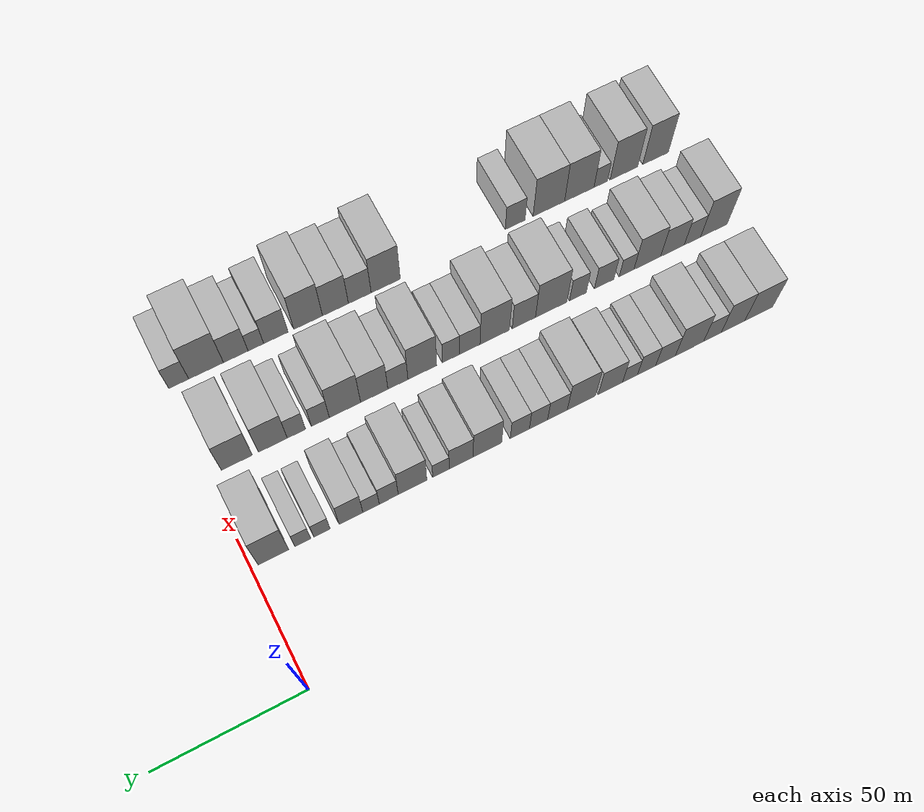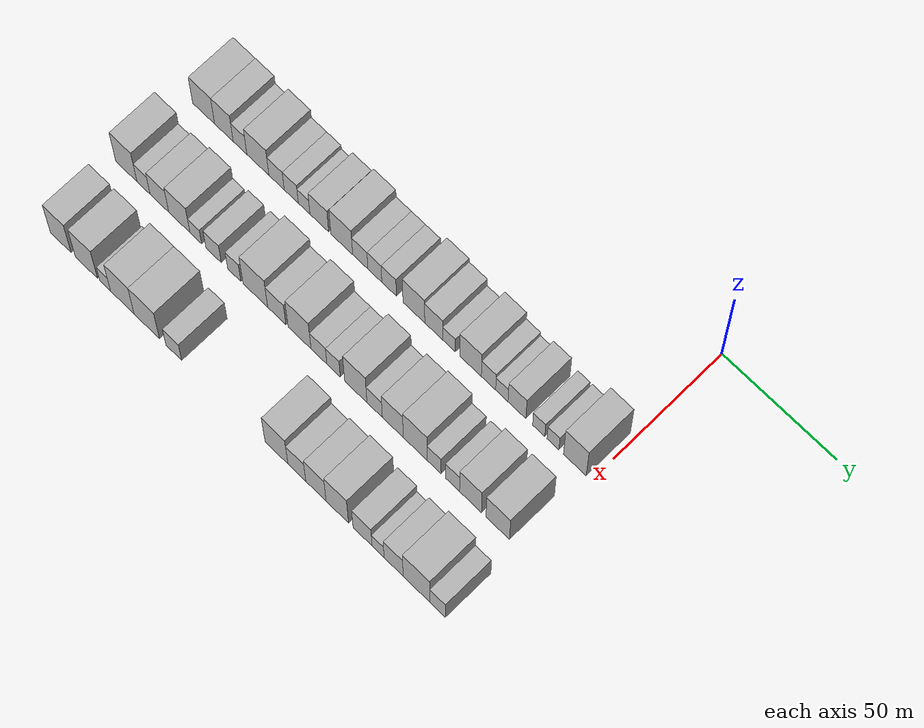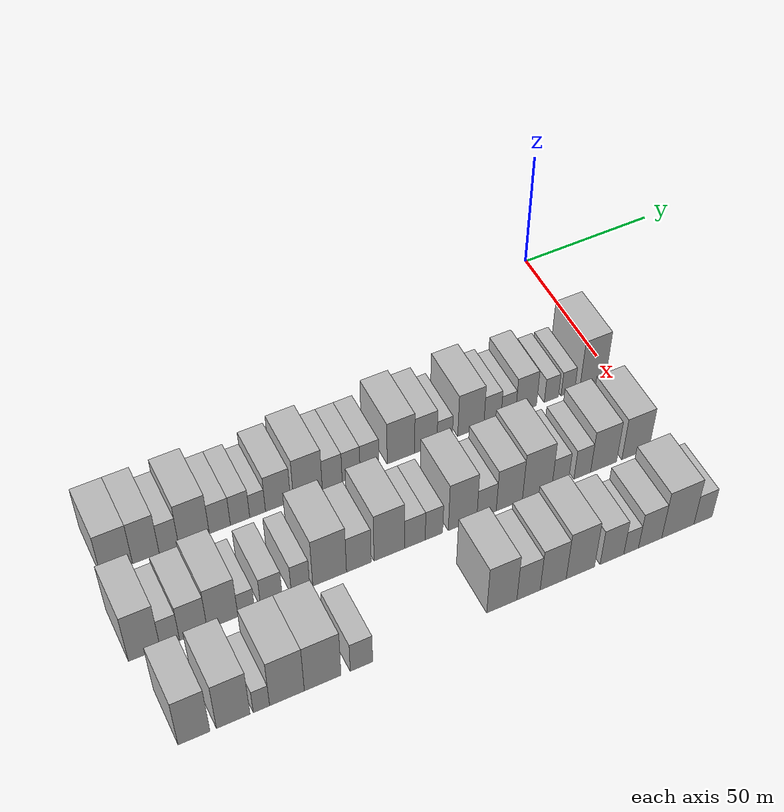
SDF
<sdf version="1.6">
 <world name="default">
  <model name="building_22">
   <static>1</static>
   <pose>50.0000 -177.7579 0 0.000000 0.000000 0.000000</pose>
   <link name="link">
    <pose>0 0 10.50 0 0 0</pose>
    <collision name="collision"><geometry><box><size>20.0000 10.4993 21.0000</size></box></geometry></collision>
    <visual name="visual">
     <cast_shadows>0</cast_shadows>
     <geometry><box><size>20.0000 10.4993 21.0000</size></box></geometry>
     <material>
      <script>
       <uri>model://HANNAS_wall/materials/scripts</uri>
       <uri>model://HANNAS_wall/materials/textures</uri>
       <name>vrc/HANNAS_wall</name>
      </script>
     </material>
    </visual>
   </link>
  </model>
  <model name="building_23">
   <static>1</static>
   <pose>50.0000 -168.1030 0 0.000000 0.000000 0.000000</pose>
   <link name="link">
    <pose>0 0 10.50 0 0 0</pose>
    <collision name="collision"><geometry><box><size>20.0000 8.8106 21.0000</size></box></geometry></collision>
    <visual name="visual">
     <cast_shadows>0</cast_shadows>
     <geometry><box><size>20.0000 8.8106 21.0000</size></box></geometry>
     <material>
      <script>
       <uri>model://HANNAS_wall/materials/scripts</uri>
       <uri>model://HANNAS_wall/materials/textures</uri>
       <name>vrc/HANNAS_wall</name>
      </script>
     </material>
    </visual>
   </link>
  </model>
  <model name="building_24">
   <static>1</static>
   <pose>50.0000 -160.4572 0 0.000000 0.000000 0.000000</pose>
   <link name="link">
    <pose>0 0 7.50 0 0 0</pose>
    <collision name="collision"><geometry><box><size>20.0000 6.4809 15.0000</size></box></geometry></collision>
    <visual name="visual">
     <cast_shadows>0</cast_shadows>
     <geometry><box><size>20.0000 6.4809 15.0000</size></box></geometry>
     <material>
      <script>
       <uri>model://HANNAS_wall/materials/scripts</uri>
       <uri>model://HANNAS_wall/materials/textures</uri>
       <name>vrc/HANNAS_wall</name>
      </script>
     </material>
    </visual>
   </link>
  </model>
  <model name="building_25">
   <static>1</static>
   <pose>50.0000 -152.0368 0 0.000000 0.000000 0.000000</pose>
   <link name="link">
    <pose>0 0 10.50 0 0 0</pose>
    <collision name="collision"><geometry><box><size>20.0000 10.3600 21.0000</size></box></geometry></collision>
    <visual name="visual">
     <cast_shadows>0</cast_shadows>
     <geometry><box><size>20.0000 10.3600 21.0000</size></box></geometry>
     <material>
      <script>
       <uri>model://HANNAS_wall/materials/scripts</uri>
       <uri>model://HANNAS_wall/materials/textures</uri>
       <name>vrc/HANNAS_wall</name>
      </script>
     </material>
    </visual>
   </link>
  </model>
  <model name="building_26">
   <static>1</static>
   <pose>50.0000 -143.2596 0 0.000000 0.000000 0.000000</pose>
   <link name="link">
    <pose>0 0 7.50 0 0 0</pose>
    <collision name="collision"><geometry><box><size>20.0000 7.1944 15.0000</size></box></geometry></collision>
    <visual name="visual">
     <cast_shadows>0</cast_shadows>
     <geometry><box><size>20.0000 7.1944 15.0000</size></box></geometry>
     <material>
      <script>
       <uri>model://HANNAS_wall/materials/scripts</uri>
       <uri>model://HANNAS_wall/materials/textures</uri>
       <name>vrc/HANNAS_wall</name>
      </script>
     </material>
    </visual>
   </link>
  </model>
  <model name="building_27">
   <static>1</static>
   <pose>50.0000 -136.3600 0 0.000000 0.000000 0.000000</pose>
   <link name="link">
    <pose>0 0 7.50 0 0 0</pose>
    <collision name="collision"><geometry><box><size>20.0000 6.6048 15.0000</size></box></geometry></collision>
    <visual name="visual">
     <cast_shadows>0</cast_shadows>
     <geometry><box><size>20.0000 6.6048 15.0000</size></box></geometry>
     <material>
      <script>
       <uri>model://HANNAS_wall/materials/scripts</uri>
       <uri>model://HANNAS_wall/materials/textures</uri>
       <name>vrc/HANNAS_wall</name>
      </script>
     </material>
    </visual>
   </link>
  </model>
  <model name="building_28">
   <static>1</static>
   <pose>50.0000 -130.3488 0 0.000000 0.000000 0.000000</pose>
   <link name="link">
    <pose>0 0 6.00 0 0 0</pose>
    <collision name="collision"><geometry><box><size>20.0000 5.4176 12.0000</size></box></geometry></collision>
    <visual name="visual">
     <cast_shadows>0</cast_shadows>
     <geometry><box><size>20.0000 5.4176 12.0000</size></box></geometry>
     <material>
      <script>
       <uri>model://HANNAS_wall/materials/scripts</uri>
       <uri>model://HANNAS_wall/materials/textures</uri>
       <name>vrc/HANNAS_wall</name>
      </script>
     </material>
    </visual>
   </link>
  </model>
  <model name="building_29">
   <static>1</static>
   <pose>50.0000 -123.2638 0 0.000000 0.000000 0.000000</pose>
   <link name="link">
    <pose>0 0 9.00 0 0 0</pose>
    <collision name="collision"><geometry><box><size>20.0000 8.7524 18.0000</size></box></geometry></collision>
    <visual name="visual">
     <cast_shadows>0</cast_shadows>
     <geometry><box><size>20.0000 8.7524 18.0000</size></box></geometry>
     <material>
      <script>
       <uri>model://HANNAS_wall/materials/scripts</uri>
       <uri>model://HANNAS_wall/materials/textures</uri>
       <name>vrc/HANNAS_wall</name>
      </script>
     </material>
    </visual>
   </link>
  </model>
  <model name="building_30">
   <static>1</static>
   <pose>50.0000 -112.8413 0 0.000000 0.000000 0.000000</pose>
   <link name="link">
    <pose>0 0 10.50 0 0 0</pose>
    <collision name="collision"><geometry><box><size>20.0000 10.0927 21.0000</size></box></geometry></collision>
    <visual name="visual">
     <cast_shadows>0</cast_shadows>
     <geometry><box><size>20.0000 10.0927 21.0000</size></box></geometry>
     <material>
      <script>
       <uri>model://HANNAS_wall/materials/scripts</uri>
       <uri>model://HANNAS_wall/materials/textures</uri>
       <name>vrc/HANNAS_wall</name>
      </script>
     </material>
    </visual>
   </link>
  </model>
  <model name="building_31">
   <static>1</static>
   <pose>50.0000 -104.2819 0 0.000000 0.000000 0.000000</pose>
   <link name="link">
    <pose>0 0 7.50 0 0 0</pose>
    <collision name="collision"><geometry><box><size>20.0000 7.0259 15.0000</size></box></geometry></collision>
    <visual name="visual">
     <cast_shadows>0</cast_shadows>
     <geometry><box><size>20.0000 7.0259 15.0000</size></box></geometry>
     <material>
      <script>
       <uri>model://HANNAS_wall/materials/scripts</uri>
       <uri>model://HANNAS_wall/materials/textures</uri>
       <name>vrc/HANNAS_wall</name>
      </script>
     </material>
    </visual>
   </link>
  </model>
  <model name="building_32">
   <static>1</static>
   <pose>50.0000 -97.5649 0 0.000000 0.000000 0.000000</pose>
   <link name="link">
    <pose>0 0 7.50 0 0 0</pose>
    <collision name="collision"><geometry><box><size>20.0000 6.4082 15.0000</size></box></geometry></collision>
    <visual name="visual">
     <cast_shadows>0</cast_shadows>
     <geometry><box><size>20.0000 6.4082 15.0000</size></box></geometry>
     <material>
      <script>
       <uri>model://HANNAS_wall/materials/scripts</uri>
       <uri>model://HANNAS_wall/materials/textures</uri>
       <name>vrc/HANNAS_wall</name>
      </script>
     </material>
    </visual>
   </link>
  </model>
  <model name="building_33">
   <static>1</static>
   <pose>50.0000 -91.0051 0 0.000000 0.000000 0.000000</pose>
   <link name="link">
    <pose>0 0 7.50 0 0 0</pose>
    <collision name="collision"><geometry><box><size>20.0000 6.7113 15.0000</size></box></geometry></collision>
    <visual name="visual">
     <cast_shadows>0</cast_shadows>
     <geometry><box><size>20.0000 6.7113 15.0000</size></box></geometry>
     <material>
      <script>
       <uri>model://HANNAS_wall/materials/scripts</uri>
       <uri>model://HANNAS_wall/materials/textures</uri>
       <name>vrc/HANNAS_wall</name>
      </script>
     </material>
    </visual>
   </link>
  </model>
  <model name="building_34">
   <static>1</static>
   <pose>50.0000 -79.6715 0 0.000000 0.000000 0.000000</pose>
   <link name="link">
    <pose>0 0 10.50 0 0 0</pose>
    <collision name="collision"><geometry><box><size>20.0000 9.9561 21.0000</size></box></geometry></collision>
    <visual name="visual">
     <cast_shadows>0</cast_shadows>
     <geometry><box><size>20.0000 9.9561 21.0000</size></box></geometry>
     <material>
      <script>
       <uri>model://HANNAS_wall/materials/scripts</uri>
       <uri>model://HANNAS_wall/materials/textures</uri>
       <name>vrc/HANNAS_wall</name>
      </script>
     </material>
    </visual>
   </link>
  </model>
  <model name="building_35">
   <static>1</static>
   <pose>50.0000 -70.5820 0 0.000000 0.000000 0.000000</pose>
   <link name="link">
    <pose>0 0 9.00 0 0 0</pose>
    <collision name="collision"><geometry><box><size>20.0000 8.2228 18.0000</size></box></geometry></collision>
    <visual name="visual">
     <cast_shadows>0</cast_shadows>
     <geometry><box><size>20.0000 8.2228 18.0000</size></box></geometry>
     <material>
      <script>
       <uri>model://HANNAS_wall/materials/scripts</uri>
       <uri>model://HANNAS_wall/materials/textures</uri>
       <name>vrc/HANNAS_wall</name>
      </script>
     </material>
    </visual>
   </link>
  </model>
  <model name="building_36">
   <static>1</static>
   <pose>50.0000 -63.6314 0 0.000000 0.000000 0.000000</pose>
   <link name="link">
    <pose>0 0 6.00 0 0 0</pose>
    <collision name="collision"><geometry><box><size>20.0000 5.6785 12.0000</size></box></geometry></collision>
    <visual name="visual">
     <cast_shadows>0</cast_shadows>
     <geometry><box><size>20.0000 5.6785 12.0000</size></box></geometry>
     <material>
      <script>
       <uri>model://HANNAS_wall/materials/scripts</uri>
       <uri>model://HANNAS_wall/materials/textures</uri>
       <name>vrc/HANNAS_wall</name>
      </script>
     </material>
    </visual>
   </link>
  </model>
  <model name="building_37">
   <static>1</static>
   <pose>50.0000 -53.9282 0 0.000000 0.000000 0.000000</pose>
   <link name="link">
    <pose>0 0 10.50 0 0 0</pose>
    <collision name="collision"><geometry><box><size>20.0000 9.7278 21.0000</size></box></geometry></collision>
    <visual name="visual">
     <cast_shadows>0</cast_shadows>
     <geometry><box><size>20.0000 9.7278 21.0000</size></box></geometry>
     <material>
      <script>
       <uri>model://HANNAS_wall/materials/scripts</uri>
       <uri>model://HANNAS_wall/materials/textures</uri>
       <name>vrc/HANNAS_wall</name>
      </script>
     </material>
    </visual>
   </link>
  </model>
  <model name="building_38">
   <static>1</static>
   <pose>50.0000 -45.8464 0 0.000000 0.000000 0.000000</pose>
   <link name="link">
    <pose>0 0 7.50 0 0 0</pose>
    <collision name="collision"><geometry><box><size>20.0000 6.4358 15.0000</size></box></geometry></collision>
    <visual name="visual">
     <cast_shadows>0</cast_shadows>
     <geometry><box><size>20.0000 6.4358 15.0000</size></box></geometry>
     <material>
      <script>
       <uri>model://HANNAS_wall/materials/scripts</uri>
       <uri>model://HANNAS_wall/materials/textures</uri>
       <name>vrc/HANNAS_wall</name>
      </script>
     </material>
    </visual>
   </link>
  </model>
  <model name="building_39">
   <static>1</static>
   <pose>50.0000 -39.8545 0 0.000000 0.000000 0.000000</pose>
   <link name="link">
    <pose>0 0 6.00 0 0 0</pose>
    <collision name="collision"><geometry><box><size>20.0000 5.5482 12.0000</size></box></geometry></collision>
    <visual name="visual">
     <cast_shadows>0</cast_shadows>
     <geometry><box><size>20.0000 5.5482 12.0000</size></box></geometry>
     <material>
      <script>
       <uri>model://HANNAS_wall/materials/scripts</uri>
       <uri>model://HANNAS_wall/materials/textures</uri>
       <name>vrc/HANNAS_wall</name>
      </script>
     </material>
    </visual>
   </link>
  </model>
  <model name="building_40">
   <static>1</static>
   <pose>50.0000 -33.0967 0 0.000000 0.000000 0.000000</pose>
   <link name="link">
    <pose>0 0 9.00 0 0 0</pose>
    <collision name="collision"><geometry><box><size>20.0000 7.9673 18.0000</size></box></geometry></collision>
    <visual name="visual">
     <cast_shadows>0</cast_shadows>
     <geometry><box><size>20.0000 7.9673 18.0000</size></box></geometry>
     <material>
      <script>
       <uri>model://HANNAS_wall/materials/scripts</uri>
       <uri>model://HANNAS_wall/materials/textures</uri>
       <name>vrc/HANNAS_wall</name>
      </script>
     </material>
    </visual>
   </link>
  </model>
  <model name="building_41">
   <static>1</static>
   <pose>50.0000 -23.3904 0 0.000000 0.000000 0.000000</pose>
   <link name="link">
    <pose>0 0 6.00 0 0 0</pose>
    <collision name="collision"><geometry><box><size>20.0000 5.4453 12.0000</size></box></geometry></collision>
    <visual name="visual">
     <cast_shadows>0</cast_shadows>
     <geometry><box><size>20.0000 5.4453 12.0000</size></box></geometry>
     <material>
      <script>
       <uri>model://HANNAS_wall/materials/scripts</uri>
       <uri>model://HANNAS_wall/materials/textures</uri>
       <name>vrc/HANNAS_wall</name>
      </script>
     </material>
    </visual>
   </link>
  </model>
  <model name="building_42">
   <static>1</static>
   <pose>50.0000 -17.0258 0 0.000000 0.000000 0.000000</pose>
   <link name="link">
    <pose>0 0 6.00 0 0 0</pose>
    <collision name="collision"><geometry><box><size>20.0000 5.2839 12.0000</size></box></geometry></collision>
    <visual name="visual">
     <cast_shadows>0</cast_shadows>
     <geometry><box><size>20.0000 5.2839 12.0000</size></box></geometry>
     <material>
      <script>
       <uri>model://HANNAS_wall/materials/scripts</uri>
       <uri>model://HANNAS_wall/materials/textures</uri>
       <name>vrc/HANNAS_wall</name>
      </script>
     </material>
    </visual>
   </link>
  </model>
  <model name="building_43">
   <static>1</static>
   <pose>50.0000 -7.3435 0 0.000000 0.000000 0.000000</pose>
   <link name="link">
    <pose>0 0 12.00 0 0 0</pose>
    <collision name="collision"><geometry><box><size>20.0000 10.0807 24.0000</size></box></geometry></collision>
    <visual name="visual">
     <cast_shadows>0</cast_shadows>
     <geometry><box><size>20.0000 10.0807 24.0000</size></box></geometry>
     <material>
      <script>
       <uri>model://HANNAS_wall/materials/scripts</uri>
       <uri>model://HANNAS_wall/materials/textures</uri>
       <name>vrc/HANNAS_wall</name>
      </script>
     </material>
    </visual>
   </link>
  </model>
  <model name="building_95">
   <static>1</static>
   <pose>82.0000 -180.5960 0 0.000000 0.000000 0.000000</pose>
   <link name="link">
    <pose>0 0 12.00 0 0 0</pose>
    <collision name="collision"><geometry><box><size>20.0000 10.1352 24.0000</size></box></geometry></collision>
    <visual name="visual">
     <cast_shadows>0</cast_shadows>
     <geometry><box><size>20.0000 10.1352 24.0000</size></box></geometry>
     <material>
      <script>
       <uri>model://HANNAS_wall/materials/scripts</uri>
       <uri>model://HANNAS_wall/materials/textures</uri>
       <name>vrc/HANNAS_wall</name>
      </script>
     </material>
    </visual>
   </link>
  </model>
  <model name="building_96">
   <static>1</static>
   <pose>82.0000 -172.4311 0 0.000000 0.000000 0.000000</pose>
   <link name="link">
    <pose>0 0 7.50 0 0 0</pose>
    <collision name="collision"><geometry><box><size>20.0000 6.1946 15.0000</size></box></geometry></collision>
    <visual name="visual">
     <cast_shadows>0</cast_shadows>
     <geometry><box><size>20.0000 6.1946 15.0000</size></box></geometry>
     <material>
      <script>
       <uri>model://HANNAS_wall/materials/scripts</uri>
       <uri>model://HANNAS_wall/materials/textures</uri>
       <name>vrc/HANNAS_wall</name>
      </script>
     </material>
    </visual>
   </link>
  </model>
  <model name="building_97">
   <static>1</static>
   <pose>82.0000 -164.8817 0 0.000000 0.000000 0.000000</pose>
   <link name="link">
    <pose>0 0 9.00 0 0 0</pose>
    <collision name="collision"><geometry><box><size>20.0000 8.9042 18.0000</size></box></geometry></collision>
    <visual name="visual">
     <cast_shadows>0</cast_shadows>
     <geometry><box><size>20.0000 8.9042 18.0000</size></box></geometry>
     <material>
      <script>
       <uri>model://HANNAS_wall/materials/scripts</uri>
       <uri>model://HANNAS_wall/materials/textures</uri>
       <name>vrc/HANNAS_wall</name>
      </script>
     </material>
    </visual>
   </link>
  </model>
  <model name="building_98">
   <static>1</static>
   <pose>82.0000 -155.4103 0 0.000000 0.000000 0.000000</pose>
   <link name="link">
    <pose>0 0 10.50 0 0 0</pose>
    <collision name="collision"><geometry><box><size>20.0000 10.0386 21.0000</size></box></geometry></collision>
    <visual name="visual">
     <cast_shadows>0</cast_shadows>
     <geometry><box><size>20.0000 10.0386 21.0000</size></box></geometry>
     <material>
      <script>
       <uri>model://HANNAS_wall/materials/scripts</uri>
       <uri>model://HANNAS_wall/materials/textures</uri>
       <name>vrc/HANNAS_wall</name>
      </script>
     </material>
    </visual>
   </link>
  </model>
  <model name="building_99">
   <static>1</static>
   <pose>82.0000 -147.6497 0 0.000000 0.000000 0.000000</pose>
   <link name="link">
    <pose>0 0 6.00 0 0 0</pose>
    <collision name="collision"><geometry><box><size>20.0000 5.4827 12.0000</size></box></geometry></collision>
    <visual name="visual">
     <cast_shadows>0</cast_shadows>
     <geometry><box><size>20.0000 5.4827 12.0000</size></box></geometry>
     <material>
      <script>
       <uri>model://HANNAS_wall/materials/scripts</uri>
       <uri>model://HANNAS_wall/materials/textures</uri>
       <name>vrc/HANNAS_wall</name>
      </script>
     </material>
    </visual>
   </link>
  </model>
  <model name="building_100">
   <static>1</static>
   <pose>82.0000 -139.3034 0 0.000000 0.000000 0.000000</pose>
   <link name="link">
    <pose>0 0 7.50 0 0 0</pose>
    <collision name="collision"><geometry><box><size>20.0000 7.2098 15.0000</size></box></geometry></collision>
    <visual name="visual">
     <cast_shadows>0</cast_shadows>
     <geometry><box><size>20.0000 7.2098 15.0000</size></box></geometry>
     <material>
      <script>
       <uri>model://HANNAS_wall/materials/scripts</uri>
       <uri>model://HANNAS_wall/materials/textures</uri>
       <name>vrc/HANNAS_wall</name>
      </script>
     </material>
    </visual>
   </link>
  </model>
  <model name="building_101">
   <static>1</static>
   <pose>82.0000 -129.6141 0 0.000000 0.000000 0.000000</pose>
   <link name="link">
    <pose>0 0 7.50 0 0 0</pose>
    <collision name="collision"><geometry><box><size>20.0000 6.1689 15.0000</size></box></geometry></collision>
    <visual name="visual">
     <cast_shadows>0</cast_shadows>
     <geometry><box><size>20.0000 6.1689 15.0000</size></box></geometry>
     <material>
      <script>
       <uri>model://HANNAS_wall/materials/scripts</uri>
       <uri>model://HANNAS_wall/materials/textures</uri>
       <name>vrc/HANNAS_wall</name>
      </script>
     </material>
    </visual>
   </link>
  </model>
  <model name="building_102">
   <static>1</static>
   <pose>82.0000 -119.8057 0 0.000000 0.000000 0.000000</pose>
   <link name="link">
    <pose>0 0 12.00 0 0 0</pose>
    <collision name="collision"><geometry><box><size>20.0000 11.4478 24.0000</size></box></geometry></collision>
    <visual name="visual">
     <cast_shadows>0</cast_shadows>
     <geometry><box><size>20.0000 11.4478 24.0000</size></box></geometry>
     <material>
      <script>
       <uri>model://HANNAS_wall/materials/scripts</uri>
       <uri>model://HANNAS_wall/materials/textures</uri>
       <name>vrc/HANNAS_wall</name>
      </script>
     </material>
    </visual>
   </link>
  </model>
  <model name="building_103">
   <static>1</static>
   <pose>82.0000 -109.8684 0 0.000000 0.000000 0.000000</pose>
   <link name="link">
    <pose>0 0 9.00 0 0 0</pose>
    <collision name="collision"><geometry><box><size>20.0000 8.4266 18.0000</size></box></geometry></collision>
    <visual name="visual">
     <cast_shadows>0</cast_shadows>
     <geometry><box><size>20.0000 8.4266 18.0000</size></box></geometry>
     <material>
      <script>
       <uri>model://HANNAS_wall/materials/scripts</uri>
       <uri>model://HANNAS_wall/materials/textures</uri>
       <name>vrc/HANNAS_wall</name>
      </script>
     </material>
    </visual>
   </link>
  </model>
  <model name="building_104">
   <static>1</static>
   <pose>82.0000 -99.3650 0 0.000000 0.000000 0.000000</pose>
   <link name="link">
    <pose>0 0 12.00 0 0 0</pose>
    <collision name="collision"><geometry><box><size>20.0000 10.5802 24.0000</size></box></geometry></collision>
    <visual name="visual">
     <cast_shadows>0</cast_shadows>
     <geometry><box><size>20.0000 10.5802 24.0000</size></box></geometry>
     <material>
      <script>
       <uri>model://HANNAS_wall/materials/scripts</uri>
       <uri>model://HANNAS_wall/materials/textures</uri>
       <name>vrc/HANNAS_wall</name>
      </script>
     </material>
    </visual>
   </link>
  </model>
  <model name="building_105">
   <static>1</static>
   <pose>82.0000 -90.4520 0 0.000000 0.000000 0.000000</pose>
   <link name="link">
    <pose>0 0 7.50 0 0 0</pose>
    <collision name="collision"><geometry><box><size>20.0000 7.2458 15.0000</size></box></geometry></collision>
    <visual name="visual">
     <cast_shadows>0</cast_shadows>
     <geometry><box><size>20.0000 7.2458 15.0000</size></box></geometry>
     <material>
      <script>
       <uri>model://HANNAS_wall/materials/scripts</uri>
       <uri>model://HANNAS_wall/materials/textures</uri>
       <name>vrc/HANNAS_wall</name>
      </script>
     </material>
    </visual>
   </link>
  </model>
  <model name="building_106">
   <static>1</static>
   <pose>82.0000 -83.7524 0 0.000000 0.000000 0.000000</pose>
   <link name="link">
    <pose>0 0 7.50 0 0 0</pose>
    <collision name="collision"><geometry><box><size>20.0000 6.1534 15.0000</size></box></geometry></collision>
    <visual name="visual">
     <cast_shadows>0</cast_shadows>
     <geometry><box><size>20.0000 6.1534 15.0000</size></box></geometry>
     <material>
      <script>
       <uri>model://HANNAS_wall/materials/scripts</uri>
       <uri>model://HANNAS_wall/materials/textures</uri>
       <name>vrc/HANNAS_wall</name>
      </script>
     </material>
    </visual>
   </link>
  </model>
  <model name="building_107">
   <static>1</static>
   <pose>82.0000 -73.6053 0 0.000000 0.000000 0.000000</pose>
   <link name="link">
    <pose>0 0 12.00 0 0 0</pose>
    <collision name="collision"><geometry><box><size>20.0000 10.1406 24.0000</size></box></geometry></collision>
    <visual name="visual">
     <cast_shadows>0</cast_shadows>
     <geometry><box><size>20.0000 10.1406 24.0000</size></box></geometry>
     <material>
      <script>
       <uri>model://HANNAS_wall/materials/scripts</uri>
       <uri>model://HANNAS_wall/materials/textures</uri>
       <name>vrc/HANNAS_wall</name>
      </script>
     </material>
    </visual>
   </link>
  </model>
  <model name="building_108">
   <static>1</static>
   <pose>82.0000 -65.0375 0 0.000000 0.000000 0.000000</pose>
   <link name="link">
    <pose>0 0 7.50 0 0 0</pose>
    <collision name="collision"><geometry><box><size>20.0000 6.9950 15.0000</size></box></geometry></collision>
    <visual name="visual">
     <cast_shadows>0</cast_shadows>
     <geometry><box><size>20.0000 6.9950 15.0000</size></box></geometry>
     <material>
      <script>
       <uri>model://HANNAS_wall/materials/scripts</uri>
       <uri>model://HANNAS_wall/materials/textures</uri>
       <name>vrc/HANNAS_wall</name>
      </script>
     </material>
    </visual>
   </link>
  </model>
  <model name="building_109">
   <static>1</static>
   <pose>82.0000 -56.7947 0 0.000000 0.000000 0.000000</pose>
   <link name="link">
    <pose>0 0 10.50 0 0 0</pose>
    <collision name="collision"><geometry><box><size>20.0000 9.4907 21.0000</size></box></geometry></collision>
    <visual name="visual">
     <cast_shadows>0</cast_shadows>
     <geometry><box><size>20.0000 9.4907 21.0000</size></box></geometry>
     <material>
      <script>
       <uri>model://HANNAS_wall/materials/scripts</uri>
       <uri>model://HANNAS_wall/materials/textures</uri>
       <name>vrc/HANNAS_wall</name>
      </script>
     </material>
    </visual>
   </link>
  </model>
  <model name="building_110">
   <static>1</static>
   <pose>82.0000 -46.6525 0 0.000000 0.000000 0.000000</pose>
   <link name="link">
    <pose>0 0 12.00 0 0 0</pose>
    <collision name="collision"><geometry><box><size>20.0000 10.7937 24.0000</size></box></geometry></collision>
    <visual name="visual">
     <cast_shadows>0</cast_shadows>
     <geometry><box><size>20.0000 10.7937 24.0000</size></box></geometry>
     <material>
      <script>
       <uri>model://HANNAS_wall/materials/scripts</uri>
       <uri>model://HANNAS_wall/materials/textures</uri>
       <name>vrc/HANNAS_wall</name>
      </script>
     </material>
    </visual>
   </link>
  </model>
  <model name="building_111">
   <static>1</static>
   <pose>82.0000 -38.1685 0 0.000000 0.000000 0.000000</pose>
   <link name="link">
    <pose>0 0 7.50 0 0 0</pose>
    <collision name="collision"><geometry><box><size>20.0000 6.1743 15.0000</size></box></geometry></collision>
    <visual name="visual">
     <cast_shadows>0</cast_shadows>
     <geometry><box><size>20.0000 6.1743 15.0000</size></box></geometry>
     <material>
      <script>
       <uri>model://HANNAS_wall/materials/scripts</uri>
       <uri>model://HANNAS_wall/materials/textures</uri>
       <name>vrc/HANNAS_wall</name>
      </script>
     </material>
    </visual>
   </link>
  </model>
  <model name="building_112">
   <static>1</static>
   <pose>82.0000 -29.9631 0 0.000000 0.000000 0.000000</pose>
   <link name="link">
    <pose>0 0 7.50 0 0 0</pose>
    <collision name="collision"><geometry><box><size>20.0000 6.2363 15.0000</size></box></geometry></collision>
    <visual name="visual">
     <cast_shadows>0</cast_shadows>
     <geometry><box><size>20.0000 6.2363 15.0000</size></box></geometry>
     <material>
      <script>
       <uri>model://HANNAS_wall/materials/scripts</uri>
       <uri>model://HANNAS_wall/materials/textures</uri>
       <name>vrc/HANNAS_wall</name>
      </script>
     </material>
    </visual>
   </link>
  </model>
  <model name="building_113">
   <static>1</static>
   <pose>82.0000 -21.9570 0 0.000000 0.000000 0.000000</pose>
   <link name="link">
    <pose>0 0 10.50 0 0 0</pose>
    <collision name="collision"><geometry><box><size>20.0000 9.7760 21.0000</size></box></geometry></collision>
    <visual name="visual">
     <cast_shadows>0</cast_shadows>
     <geometry><box><size>20.0000 9.7760 21.0000</size></box></geometry>
     <material>
      <script>
       <uri>model://HANNAS_wall/materials/scripts</uri>
       <uri>model://HANNAS_wall/materials/textures</uri>
       <name>vrc/HANNAS_wall</name>
      </script>
     </material>
    </visual>
   </link>
  </model>
  <model name="building_114">
   <static>1</static>
   <pose>82.0000 -9.8569 0 0.000000 0.000000 0.000000</pose>
   <link name="link">
    <pose>0 0 10.50 0 0 0</pose>
    <collision name="collision"><geometry><box><size>20.0000 10.4240 21.0000</size></box></geometry></collision>
    <visual name="visual">
     <cast_shadows>0</cast_shadows>
     <geometry><box><size>20.0000 10.4240 21.0000</size></box></geometry>
     <material>
      <script>
       <uri>model://HANNAS_wall/materials/scripts</uri>
       <uri>model://HANNAS_wall/materials/textures</uri>
       <name>vrc/HANNAS_wall</name>
      </script>
     </material>
    </visual>
   </link>
  </model>
  <model name="building_172">
   <static>1</static>
   <pose>114.0000 -177.3950 0 0.000000 0.000000 0.000000</pose>
   <link name="link">
    <pose>0 0 12.00 0 0 0</pose>
    <collision name="collision"><geometry><box><size>20.0000 9.8769 24.0000</size></box></geometry></collision>
    <visual name="visual">
     <cast_shadows>0</cast_shadows>
     <geometry><box><size>20.0000 9.8769 24.0000</size></box></geometry>
     <material>
      <script>
       <uri>model://HANNAS_wall/materials/scripts</uri>
       <uri>model://HANNAS_wall/materials/textures</uri>
       <name>vrc/HANNAS_wall</name>
      </script>
     </material>
    </visual>
   </link>
  </model>
  <model name="building_173">
   <static>1</static>
   <pose>114.0000 -165.1748 0 0.000000 0.000000 0.000000</pose>
   <link name="link">
    <pose>0 0 12.00 0 0 0</pose>
    <collision name="collision"><geometry><box><size>20.0000 10.5636 24.0000</size></box></geometry></collision>
    <visual name="visual">
     <cast_shadows>0</cast_shadows>
     <geometry><box><size>20.0000 10.5636 24.0000</size></box></geometry>
     <material>
      <script>
       <uri>model://HANNAS_wall/materials/scripts</uri>
       <uri>model://HANNAS_wall/materials/textures</uri>
       <name>vrc/HANNAS_wall</name>
      </script>
     </material>
    </visual>
   </link>
  </model>
  <model name="building_174">
   <static>1</static>
   <pose>114.0000 -156.3089 0 0.000000 0.000000 0.000000</pose>
   <link name="link">
    <pose>0 0 6.00 0 0 0</pose>
    <collision name="collision"><geometry><box><size>20.0000 5.1680 12.0000</size></box></geometry></collision>
    <visual name="visual">
     <cast_shadows>0</cast_shadows>
     <geometry><box><size>20.0000 5.1680 12.0000</size></box></geometry>
     <material>
      <script>
       <uri>model://HANNAS_wall/materials/scripts</uri>
       <uri>model://HANNAS_wall/materials/textures</uri>
       <name>vrc/HANNAS_wall</name>
      </script>
     </material>
    </visual>
   </link>
  </model>
  <model name="building_175">
   <static>1</static>
   <pose>114.0000 -148.1710 0 0.000000 0.000000 0.000000</pose>
   <link name="link">
    <pose>0 0 12.00 0 0 0</pose>
    <collision name="collision"><geometry><box><size>20.0000 11.1078 24.0000</size></box></geometry></collision>
    <visual name="visual">
     <cast_shadows>0</cast_shadows>
     <geometry><box><size>20.0000 11.1078 24.0000</size></box></geometry>
     <material>
      <script>
       <uri>model://HANNAS_wall/materials/scripts</uri>
       <uri>model://HANNAS_wall/materials/textures</uri>
       <name>vrc/HANNAS_wall</name>
      </script>
     </material>
    </visual>
   </link>
  </model>
  <model name="building_176">
   <static>1</static>
   <pose>114.0000 -136.6919 0 0.000000 0.000000 0.000000</pose>
   <link name="link">
    <pose>0 0 12.00 0 0 0</pose>
    <collision name="collision"><geometry><box><size>20.0000 11.8506 24.0000</size></box></geometry></collision>
    <visual name="visual">
     <cast_shadows>0</cast_shadows>
     <geometry><box><size>20.0000 11.8506 24.0000</size></box></geometry>
     <material>
      <script>
       <uri>model://HANNAS_wall/materials/scripts</uri>
       <uri>model://HANNAS_wall/materials/textures</uri>
       <name>vrc/HANNAS_wall</name>
      </script>
     </material>
    </visual>
   </link>
  </model>
  <model name="building_177">
   <static>1</static>
   <pose>114.0000 -124.0846 0 0.000000 0.000000 0.000000</pose>
   <link name="link">
    <pose>0 0 7.50 0 0 0</pose>
    <collision name="collision"><geometry><box><size>20.0000 7.3640 15.0000</size></box></geometry></collision>
    <visual name="visual">
     <cast_shadows>0</cast_shadows>
     <geometry><box><size>20.0000 7.3640 15.0000</size></box></geometry>
     <material>
      <script>
       <uri>model://HANNAS_wall/materials/scripts</uri>
       <uri>model://HANNAS_wall/materials/textures</uri>
       <name>vrc/HANNAS_wall</name>
      </script>
     </material>
    </visual>
   </link>
  </model>
  <model name="building_178">
   <static>1</static>
   <pose>114.0000 -76.7485 0 0.000000 0.000000 0.000000</pose>
   <link name="link">
    <pose>0 0 12.00 0 0 0</pose>
    <collision name="collision"><geometry><box><size>20.0000 10.4360 24.0000</size></box></geometry></collision>
    <visual name="visual">
     <cast_shadows>0</cast_shadows>
     <geometry><box><size>20.0000 10.4360 24.0000</size></box></geometry>
     <material>
      <script>
       <uri>model://HANNAS_wall/materials/scripts</uri>
       <uri>model://HANNAS_wall/materials/textures</uri>
       <name>vrc/HANNAS_wall</name>
      </script>
     </material>
    </visual>
   </link>
  </model>
  <model name="building_179">
   <static>1</static>
   <pose>114.0000 -67.4690 0 0.000000 0.000000 0.000000</pose>
   <link name="link">
    <pose>0 0 9.00 0 0 0</pose>
    <collision name="collision"><geometry><box><size>20.0000 8.1229 18.0000</size></box></geometry></collision>
    <visual name="visual">
     <cast_shadows>0</cast_shadows>
     <geometry><box><size>20.0000 8.1229 18.0000</size></box></geometry>
     <material>
      <script>
       <uri>model://HANNAS_wall/materials/scripts</uri>
       <uri>model://HANNAS_wall/materials/textures</uri>
       <name>vrc/HANNAS_wall</name>
      </script>
     </material>
    </visual>
   </link>
  </model>
  <model name="building_180">
   <static>1</static>
   <pose>114.0000 -58.8135 0 0.000000 0.000000 0.000000</pose>
   <link name="link">
    <pose>0 0 10.50 0 0 0</pose>
    <collision name="collision"><geometry><box><size>20.0000 9.1882 21.0000</size></box></geometry></collision>
    <visual name="visual">
     <cast_shadows>0</cast_shadows>
     <geometry><box><size>20.0000 9.1882 21.0000</size></box></geometry>
     <material>
      <script>
       <uri>model://HANNAS_wall/materials/scripts</uri>
       <uri>model://HANNAS_wall/materials/textures</uri>
       <name>vrc/HANNAS_wall</name>
      </script>
     </material>
    </visual>
   </link>
  </model>
  <model name="building_181">
   <static>1</static>
   <pose>114.0000 -49.1539 0 0.000000 0.000000 0.000000</pose>
   <link name="link">
    <pose>0 0 12.00 0 0 0</pose>
    <collision name="collision"><geometry><box><size>20.0000 10.1310 24.0000</size></box></geometry></collision>
    <visual name="visual">
     <cast_shadows>0</cast_shadows>
     <geometry><box><size>20.0000 10.1310 24.0000</size></box></geometry>
     <material>
      <script>
       <uri>model://HANNAS_wall/materials/scripts</uri>
       <uri>model://HANNAS_wall/materials/textures</uri>
       <name>vrc/HANNAS_wall</name>
      </script>
     </material>
    </visual>
   </link>
  </model>
  <model name="building_182">
   <static>1</static>
   <pose>114.0000 -37.8273 0 0.000000 0.000000 0.000000</pose>
   <link name="link">
    <pose>0 0 9.00 0 0 0</pose>
    <collision name="collision"><geometry><box><size>20.0000 8.5222 18.0000</size></box></geometry></collision>
    <visual name="visual">
     <cast_shadows>0</cast_shadows>
     <geometry><box><size>20.0000 8.5222 18.0000</size></box></geometry>
     <material>
      <script>
       <uri>model://HANNAS_wall/materials/scripts</uri>
       <uri>model://HANNAS_wall/materials/textures</uri>
       <name>vrc/HANNAS_wall</name>
      </script>
     </material>
    </visual>
   </link>
  </model>
  <model name="building_183">
   <static>1</static>
   <pose>114.0000 -30.8784 0 0.000000 0.000000 0.000000</pose>
   <link name="link">
    <pose>0 0 6.00 0 0 0</pose>
    <collision name="collision"><geometry><box><size>20.0000 5.3757 12.0000</size></box></geometry></collision>
    <visual name="visual">
     <cast_shadows>0</cast_shadows>
     <geometry><box><size>20.0000 5.3757 12.0000</size></box></geometry>
     <material>
      <script>
       <uri>model://HANNAS_wall/materials/scripts</uri>
       <uri>model://HANNAS_wall/materials/textures</uri>
       <name>vrc/HANNAS_wall</name>
      </script>
     </material>
    </visual>
   </link>
  </model>
  <model name="building_184">
   <static>1</static>
   <pose>114.0000 -23.9341 0 0.000000 0.000000 0.000000</pose>
   <link name="link">
    <pose>0 0 9.00 0 0 0</pose>
    <collision name="collision"><geometry><box><size>20.0000 8.5129 18.0000</size></box></geometry></collision>
    <visual name="visual">
     <cast_shadows>0</cast_shadows>
     <geometry><box><size>20.0000 8.5129 18.0000</size></box></geometry>
     <material>
      <script>
       <uri>model://HANNAS_wall/materials/scripts</uri>
       <uri>model://HANNAS_wall/materials/textures</uri>
       <name>vrc/HANNAS_wall</name>
      </script>
     </material>
    </visual>
   </link>
  </model>
  <model name="building_185">
   <static>1</static>
   <pose>114.0000 -13.7239 0 0.000000 0.000000 0.000000</pose>
   <link name="link">
    <pose>0 0 12.00 0 0 0</pose>
    <collision name="collision"><geometry><box><size>20.0000 11.9074 24.0000</size></box></geometry></collision>
    <visual name="visual">
     <cast_shadows>0</cast_shadows>
     <geometry><box><size>20.0000 11.9074 24.0000</size></box></geometry>
     <material>
      <script>
       <uri>model://HANNAS_wall/materials/scripts</uri>
       <uri>model://HANNAS_wall/materials/textures</uri>
       <name>vrc/HANNAS_wall</name>
      </script>
     </material>
    </visual>
   </link>
  </model>
  <model name="building_186">
   <static>1</static>
   <pose>114.0000 -4.3629 0 0.000000 0.000000 0.000000</pose>
   <link name="link">
    <pose>0 0 7.50 0 0 0</pose>
    <collision name="collision"><geometry><box><size>20.0000 6.8147 15.0000</size></box></geometry></collision>
    <visual name="visual">
     <cast_shadows>0</cast_shadows>
     <geometry><box><size>20.0000 6.8147 15.0000</size></box></geometry>
     <material>
      <script>
       <uri>model://HANNAS_wall/materials/scripts</uri>
       <uri>model://HANNAS_wall/materials/textures</uri>
       <name>vrc/HANNAS_wall</name>
      </script>
     </material>
    </visual>
   </link>
  </model>
 </world>
</sdf>
